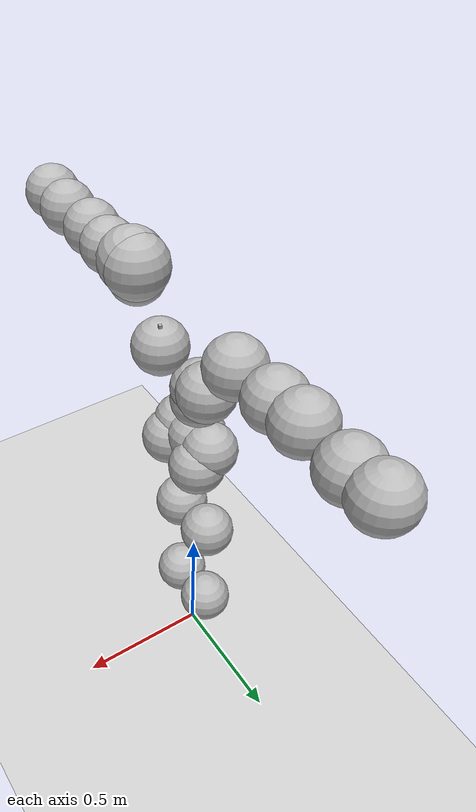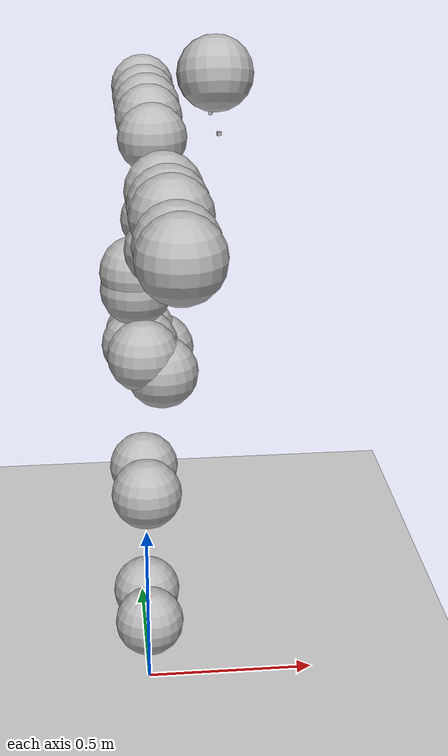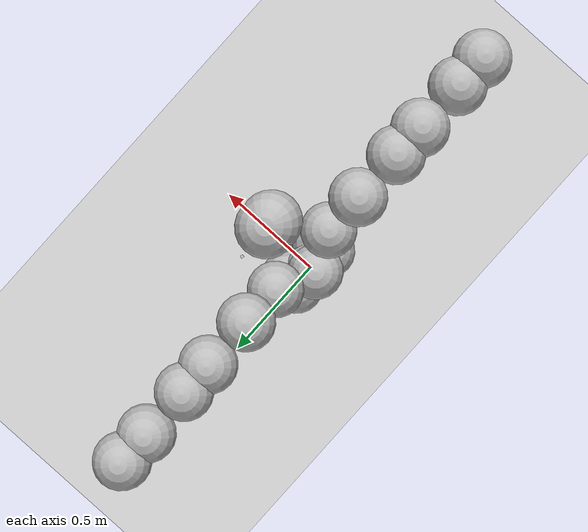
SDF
<?xml version="1.0" ?>
<sdf version="1.5">
  <world name="default">
    <!-- A ground plane -->
    <include>
      <uri>model://ground_plane</uri>
    </include>
    <gui fullscreen="0">
      <camera name="user_camera">
        <pose>-25 -15 12.0539 7.08002e-18 0.2 0.352194</pose>
      </camera>
    </gui>
    <scene>
      <ambient>0.5 0.5 0.5 1</ambient>
      <background>0.5 0.5 0.5 1</background>
      <shadows>0</shadows>
    </scene>
    <include>
      <uri>model://sun</uri>
    </include>
    <physics type="ode">
      <gravity>0 0 -9.81</gravity>
      <ode>
        <solver>
          <type>quick</type>
          <iters>50</iters>
          <sor>1.4</sor>
        </solver>
        <constraints>
          <cfm>0</cfm>
          <erp>1</erp>
          <contact_max_correcting_vel>0</contact_max_correcting_vel>
          <contact_surface_layer>0</contact_surface_layer>
        </constraints>
      </ode>
      <max_step_size>0.001</max_step_size>
      <real_time_factor>1</real_time_factor>
      <real_time_update_rate>1000</real_time_update_rate>
    </physics>
    <!-- A copy of atlas robot with all visual and
         collision geoms replaced by spheres.
    -->
    <model name="sphere_atlas">
      <link name="pelvis">
        <pose>0 0 0 0 -0 0</pose>
        <inertial>
          <pose>0.0113715 0 0.0268706 0 -0 0</pose>
          <mass>17.982</mass>
          <inertia>
            <ixx>0.125569</ixx>
            <ixy>0.0008</ixy>
            <ixz>-0.000499757</ixz>
            <iyy>0.0972062</iyy>
            <iyz>-0.0005</iyz>
            <izz>0.117937</izz>
          </inertia>
        </inertial>
        <collision name="pelvis_collision">
          <pose>0 0 0 0 -0 0</pose>
          <geometry>
            <sphere>
              <radius>0.1</radius>
            </sphere>
          </geometry>
          <surface>
            <contact>
              <ode />
            </contact>
            <friction>
              <ode>
                <mu>0.9</mu>
                <mu2>0.9</mu2>
              </ode>
            </friction>
          </surface>
        </collision>
        <visual name="pelvis_visual">
          <pose>0 0 0 0 -0 0</pose>
          <geometry>
            <sphere>
              <radius>0.1</radius>
            </sphere>
          </geometry>
        </visual>
        <visual name="pelvis_visual_imu_link">
          <pose>0.0599153 0 -0.01415 0 -0 0</pose>
          <geometry>
            <box>
              <size>0.01 0.01 0.01</size>
            </box>
          </geometry>
        </visual>
        <velocity_decay>
          <linear>0</linear>
          <angular>0</angular>
        </velocity_decay>
        <gravity>1</gravity>
        <velocity_decay>
          <linear>0</linear>
          <angular>0</angular>
        </velocity_decay>
        <self_collide>0</self_collide>
        <sensor name="imu_sensor" type="imu">
          <always_on>1</always_on>
          <update_rate>1000</update_rate>
          <imu>
            <angular_velocity>
              <x>
                <noise type="gaussian">
                 <mean>0</mean>
                 <stddev>0.0002</stddev>
                 <bias_mean>7.5e-06</bias_mean>
                 <bias_stddev>8e-07</bias_stddev>
                </noise>
              </x>
              <y>
                <noise type="gaussian">
                 <mean>0</mean>
                 <stddev>0.0002</stddev>
                 <bias_mean>7.5e-06</bias_mean>
                 <bias_stddev>8e-07</bias_stddev>
                </noise>
              </y>
              <z>
                <noise type="gaussian">
                 <mean>0</mean>
                 <stddev>0.0002</stddev>
                 <bias_mean>7.5e-06</bias_mean>
                 <bias_stddev>8e-07</bias_stddev>
                </noise>
              </z>
            </angular_velocity>

            <linear_acceleration>
              <x>
                <noise type="gaussian">
                  <mean>0</mean>
                  <stddev>0.017</stddev>
                  <bias_mean>0.1</bias_mean>
                  <bias_stddev>0.001</bias_stddev>
                </noise>
              </x>
              <y>
                <noise type="gaussian">
                  <mean>0</mean>
                  <stddev>0.017</stddev>
                  <bias_mean>0.1</bias_mean>
                  <bias_stddev>0.001</bias_stddev>
                </noise>
              </y>
              <z>
                <noise type="gaussian">
                  <mean>0</mean>
                  <stddev>0.017</stddev>
                  <bias_mean>0.1</bias_mean>
                  <bias_stddev>0.001</bias_stddev>
                </noise>
              </z>
            </linear_acceleration>
          </imu>
          <pose>0.0599153 0 -0.01415 0 -0 0</pose>
        </sensor>
      </link>
      <link name="ltorso">
        <pose>-0.0125 0 0 0 -0 0</pose>
        <inertial>
          <pose>-0.0112984 -3.15366e-06 0.0746835 0 -0 0</pose>
          <mass>2.409</mass>
          <inertia>
            <ixx>0.0039092</ixx>
            <ixy>-5.04491e-08</ixy>
            <ixz>-0.000342157</ixz>
            <iyy>0.00341694</iyy>
            <iyz>4.87119e-07</iyz>
            <izz>0.00174492</izz>
          </inertia>
        </inertial>
        <collision name="ltorso_collision">
          <pose>0 0 0 0 -0 0</pose>
          <geometry>
            <sphere>
              <radius>0.1</radius>
            </sphere>
          </geometry>
          <surface>
            <contact>
              <ode />
            </contact>
            <friction>
              <ode>
                <mu>0.9</mu>
                <mu2>0.9</mu2>
              </ode>
            </friction>
          </surface>
        </collision>
        <visual name="ltorso_visual">
          <pose>0 0 0 0 -0 0</pose>
          <geometry>
            <sphere>
              <radius>0.1</radius>
            </sphere>
          </geometry>
        </visual>
        <gravity>1</gravity>
        <velocity_decay>
          <linear>0</linear>
          <angular>0</angular>
        </velocity_decay>
        <self_collide>0</self_collide>
      </link>
      <joint name="back_bkz" type="revolute">
        <child>ltorso</child>
        <parent>pelvis</parent>
        <axis>
          <xyz>0 0 1</xyz>
          <limit>
            <lower>-0.663225</lower>
            <upper>0.663225</upper>
            <effort>124.016</effort>
            <velocity>12</velocity>
          </limit>
          <dynamics>
            <damping>0.1</damping>
          </dynamics>
          <use_parent_model_frame>true</use_parent_model_frame>
        </axis>
        <physics>
          <ode>
            <cfm_damping>1</cfm_damping>
            <limit>
              <cfm>0</cfm>
              <erp>0.2</erp>
            </limit>
          </ode>
        </physics>
      </joint>
      <link name="mtorso">
        <pose>-0.0125 0 0.16197 0 -0 0</pose>
        <inertial>
          <pose>-0.00816266 -0.0131245 0.0305974 0 -0 0</pose>
          <mass>0.69</mass>
          <inertia>
            <ixx>0.000454181</ixx>
            <ixy>-6.10764e-05</ixy>
            <ixz>3.94009e-05</ixz>
            <iyy>0.000483282</iyy>
            <iyz>5.27463e-05</iyz>
            <izz>0.000444215</izz>
          </inertia>
        </inertial>
        <collision name="mtorso_collision">
          <pose>0 0 0 0 -0 0</pose>
          <geometry>
            <sphere>
              <radius>0.1</radius>
            </sphere>
          </geometry>
          <surface>
            <contact>
              <ode />
            </contact>
            <friction>
              <ode>
                <mu>0.9</mu>
                <mu2>0.9</mu2>
              </ode>
            </friction>
          </surface>
        </collision>
        <visual name="mtorso_visual">
          <pose>0 0 0 0 -0 0</pose>
          <geometry>
            <sphere>
              <radius>0.1</radius>
            </sphere>
          </geometry>
        </visual>
        <gravity>1</gravity>
        <velocity_decay>
          <linear>0</linear>
          <angular>0</angular>
        </velocity_decay>
        <self_collide>0</self_collide>
      </link>
      <joint name="back_bky" type="revolute">
        <child>mtorso</child>
        <parent>ltorso</parent>
        <axis>
          <xyz>0 1 0</xyz>
          <limit>
            <lower>-0.610691</lower>
            <upper>0.438427</upper>
            <effort>206.843</effort>
            <velocity>12</velocity>
          </limit>
          <dynamics>
            <damping>0.1</damping>
          </dynamics>
          <use_parent_model_frame>true</use_parent_model_frame>
        </axis>
        <physics>
          <ode>
            <cfm_damping>1</cfm_damping>
            <limit>
              <cfm>0</cfm>
              <erp>0.2</erp>
            </limit>
          </ode>
        </physics>
      </joint>
      <link name="utorso">
        <pose>-0.0125 0 0.21197 0 -0 0</pose>
        <inertial>
          <pose>-0.0911174 0 0.300409 0 -0 0</pose>
          <mass>52.207</mass>
          <inertia>
            <ixx>1.47126</ixx>
            <ixy>0.00362</ixy>
            <ixz>0.329434</ixz>
            <iyy>1.53128</iyy>
            <iyz>0.001</iyz>
            <izz>1.32197</izz>
          </inertia>
        </inertial>
        <collision name="utorso_collision">
          <pose>0 0 0 0 -0 0</pose>
          <geometry>
            <sphere>
              <radius>0.1</radius>
            </sphere>
          </geometry>
          <surface>
            <contact>
              <ode />
            </contact>
            <friction>
              <ode>
                <mu>0.9</mu>
                <mu2>0.9</mu2>
              </ode>
            </friction>
          </surface>
        </collision>
        <collision name="utorso_collision_utorso_1">
          <pose>0 0 0 0 -0 0</pose>
          <geometry>
            <sphere>
              <radius>0.1</radius>
            </sphere>
          </geometry>
          <surface>
            <contact>
              <ode />
            </contact>
            <friction>
              <ode>
                <mu>0.9</mu>
                <mu2>0.9</mu2>
              </ode>
            </friction>
          </surface>
        </collision>
        <visual name="utorso_visual">
          <pose>0 0 0 0 -0 0</pose>
          <geometry>
            <sphere>
              <radius>0.1</radius>
            </sphere>
          </geometry>
        </visual>
        <visual name="utorso_visual_utorso_1">
          <pose>0 0 0 0 -0 0</pose>
          <geometry>
            <sphere>
              <radius>0.1</radius>
            </sphere>
          </geometry>
        </visual>
        <visual name="utorso_visual_l_situational_awareness_camera_link">
          <pose>0.216409 0.121799 0.406759 -1.5708 5.55112e-17 1.309</pose>
          <geometry>
            <box>
              <size>0.01 0.01 0.01</size>
            </box>
          </geometry>
        </visual>
        <visual name="utorso_visual_r_situational_awareness_camera_link">
          <pose>0.216409 -0.121799 0.406759 1.5708 5.55112e-17 -1.309</pose>
          <geometry>
            <box>
              <size>0.01 0.01 0.01</size>
            </box>
          </geometry>
        </visual>
        <velocity_decay>
          <linear>0</linear>
          <angular>0</angular>
        </velocity_decay>
        <velocity_decay>
          <linear>0</linear>
          <angular>0</angular>
        </velocity_decay>
        <gravity>1</gravity>
        <velocity_decay>
          <linear>0</linear>
          <angular>0</angular>
        </velocity_decay>
        <self_collide>0</self_collide>
      </link>
      <joint name="back_bkx" type="revolute">
        <child>utorso</child>
        <parent>mtorso</parent>
        <axis>
          <xyz>1 0 0</xyz>
          <limit>
            <lower>-0.698132</lower>
            <upper>0.698132</upper>
            <effort>200</effort>
            <velocity>12</velocity>
          </limit>
          <dynamics>
            <damping>0.1</damping>
          </dynamics>
          <use_parent_model_frame>true</use_parent_model_frame>
        </axis>
        <physics>
          <ode>
            <cfm_damping>1</cfm_damping>
            <limit>
              <cfm>0</cfm>
              <erp>0.2</erp>
            </limit>
          </ode>
        </physics>
      </joint>
      <link name="l_clav">
        <pose>0.05191 0.13866 0.31915 0 -0 0</pose>
        <inertial>
          <pose>0 0.048 0.084 0 -0 0</pose>
          <mass>3.45</mass>
          <inertia>
            <ixx>0.011</ixx>
            <ixy>0</ixy>
            <ixz>0</ixz>
            <iyy>0.009</iyy>
            <iyz>-0.004</iyz>
            <izz>0.004</izz>
          </inertia>
        </inertial>
        <collision name="l_clav_collision">
          <pose>0 0 0 0 -0 0</pose>
          <geometry>
            <sphere>
              <radius>0.1</radius>
            </sphere>
          </geometry>
          <surface>
            <contact>
              <ode />
            </contact>
            <friction>
              <ode>
                <mu>0.9</mu>
                <mu2>0.9</mu2>
              </ode>
            </friction>
          </surface>
        </collision>
        <visual name="l_clav_visual">
          <pose>0 0 0 0 -0 0</pose>
          <geometry>
            <sphere>
              <radius>0.1</radius>
            </sphere>
          </geometry>
        </visual>
        <gravity>1</gravity>
        <velocity_decay>
          <linear>0</linear>
          <angular>0</angular>
        </velocity_decay>
        <self_collide>0</self_collide>
      </link>
      <joint name="l_arm_shy" type="revolute">
        <child>l_clav</child>
        <parent>utorso</parent>
        <axis>
          <xyz>0 0.5 0.866025</xyz>
          <limit>
            <lower>-1.5708</lower>
            <upper>0.785398</upper>
            <effort>212</effort>
            <velocity>12</velocity>
          </limit>
          <dynamics>
            <damping>0.1</damping>
          </dynamics>
          <use_parent_model_frame>true</use_parent_model_frame>
        </axis>
        <physics>
          <ode>
            <cfm_damping>1</cfm_damping>
            <limit>
              <cfm>0</cfm>
              <erp>0.2</erp>
            </limit>
          </ode>
        </physics>
      </joint>
      <link name="l_scap">
        <pose>0.05191 0.27901 0.51524 0 -0 0</pose>
        <inertial>
          <pose>0 0 0 0 -0 0</pose>
          <mass>3.012</mass>
          <inertia>
            <ixx>0.00319</ixx>
            <ixy>0</ixy>
            <ixz>0</ixz>
            <iyy>0.00583</iyy>
            <iyz>0</iyz>
            <izz>0.00583</izz>
          </inertia>
        </inertial>
        <collision name="l_scap_collision">
          <pose>0 0 0 0 -0 0</pose>
          <geometry>
            <sphere>
              <radius>0.1</radius>
            </sphere>
          </geometry>
          <surface>
            <contact>
              <ode />
            </contact>
            <friction>
              <ode>
                <mu>0.9</mu>
                <mu2>0.9</mu2>
              </ode>
            </friction>
          </surface>
        </collision>
        <visual name="l_scap_visual">
          <pose>0 0 0 0 -0 0</pose>
          <geometry>
            <sphere>
              <radius>0.1</radius>
            </sphere>
          </geometry>
        </visual>
        <gravity>1</gravity>
        <velocity_decay>
          <linear>0</linear>
          <angular>0</angular>
        </velocity_decay>
        <self_collide>0</self_collide>
      </link>
      <joint name="l_arm_shx" type="revolute">
        <child>l_scap</child>
        <parent>l_clav</parent>
        <axis>
          <xyz>1 0 0</xyz>
          <limit>
            <lower>-1.5708</lower>
            <upper>1.5708</upper>
            <effort>170</effort>
            <velocity>12</velocity>
          </limit>
          <dynamics>
            <damping>0.1</damping>
          </dynamics>
          <use_parent_model_frame>true</use_parent_model_frame>
        </axis>
        <physics>
          <ode>
            <cfm_damping>1</cfm_damping>
            <limit>
              <cfm>0</cfm>
              <erp>0.2</erp>
            </limit>
          </ode>
        </physics>
      </joint>
      <link name="l_uarm">
        <pose>0.05191 0.46601 0.53124 0 -0 0</pose>
        <inertial>
          <pose>0 -0.065 0 0 -0 0</pose>
          <mass>3.388</mass>
          <inertia>
            <ixx>0.00656</ixx>
            <ixy>0</ixy>
            <ixz>0</ixz>
            <iyy>0.00358</iyy>
            <iyz>0</iyz>
            <izz>0.00656</izz>
          </inertia>
        </inertial>
        <collision name="l_uarm_collision">
          <pose>0 0 0 0 -0 0</pose>
          <geometry>
            <sphere>
              <radius>0.1</radius>
            </sphere>
          </geometry>
          <surface>
            <contact>
              <ode />
            </contact>
            <friction>
              <ode>
                <mu>0.9</mu>
                <mu2>0.9</mu2>
              </ode>
            </friction>
          </surface>
        </collision>
        <visual name="l_uarm_visual">
          <pose>0 0 0 0 -0 0</pose>
          <geometry>
            <sphere>
              <radius>0.1</radius>
            </sphere>
          </geometry>
        </visual>
        <gravity>1</gravity>
        <velocity_decay>
          <linear>0</linear>
          <angular>0</angular>
        </velocity_decay>
        <self_collide>0</self_collide>
      </link>
      <joint name="l_arm_ely" type="revolute">
        <child>l_uarm</child>
        <parent>l_scap</parent>
        <axis>
          <xyz>0 1 0</xyz>
          <limit>
            <lower>0</lower>
            <upper>3.14159</upper>
            <effort>114</effort>
            <velocity>12</velocity>
          </limit>
          <dynamics>
            <damping>0.1</damping>
          </dynamics>
          <use_parent_model_frame>true</use_parent_model_frame>
        </axis>
        <physics>
          <ode>
            <cfm_damping>1</cfm_damping>
            <limit>
              <cfm>0</cfm>
              <erp>0.2</erp>
            </limit>
          </ode>
        </physics>
      </joint>
      <link name="l_larm">
        <pose>0.05191 0.58501 0.54045 0 -0 0</pose>
        <inertial>
          <pose>0 0 0 0 -0 0</pose>
          <mass>2.509</mass>
          <inertia>
            <ixx>0.00265</ixx>
            <ixy>0</ixy>
            <ixz>0</ixz>
            <iyy>0.00446</iyy>
            <iyz>0</iyz>
            <izz>0.00446</izz>
          </inertia>
        </inertial>
        <collision name="l_larm_collision">
          <pose>0 0 0 0 -0 0</pose>
          <geometry>
            <sphere>
              <radius>0.1</radius>
            </sphere>
          </geometry>
          <surface>
            <contact>
              <ode />
            </contact>
            <friction>
              <ode>
                <mu>0.9</mu>
                <mu2>0.9</mu2>
              </ode>
            </friction>
          </surface>
        </collision>
        <visual name="l_larm_visual">
          <pose>0 0 0 0 -0 0</pose>
          <geometry>
            <sphere>
              <radius>0.1</radius>
            </sphere>
          </geometry>
        </visual>
        <gravity>1</gravity>
        <velocity_decay>
          <linear>0</linear>
          <angular>0</angular>
        </velocity_decay>
        <self_collide>0</self_collide>
      </link>
      <joint name="l_arm_elx" type="revolute">
        <child>l_larm</child>
        <parent>l_uarm</parent>
        <axis>
          <xyz>1 0 0</xyz>
          <limit>
            <lower>0</lower>
            <upper>2.35619</upper>
            <effort>114</effort>
            <velocity>12</velocity>
          </limit>
          <dynamics>
            <damping>0.1</damping>
          </dynamics>
          <use_parent_model_frame>true</use_parent_model_frame>
        </axis>
        <physics>
          <ode>
            <cfm_damping>1</cfm_damping>
            <limit>
              <cfm>0</cfm>
              <erp>0.2</erp>
            </limit>
          </ode>
        </physics>
      </joint>
      <link name="l_farm">
        <pose>0.05191 0.77201 0.53124 0 -0 0</pose>
        <inertial>
          <pose>0 -0.065 0 0 -0 0</pose>
          <mass>3.388</mass>
          <inertia>
            <ixx>0.00656</ixx>
            <ixy>0</ixy>
            <ixz>0</ixz>
            <iyy>0.00358</iyy>
            <iyz>0</iyz>
            <izz>0.00656</izz>
          </inertia>
        </inertial>
        <collision name="l_farm_collision">
          <pose>0 0 0 0 -0 0</pose>
          <geometry>
            <sphere>
              <radius>0.1</radius>
            </sphere>
          </geometry>
          <surface>
            <contact>
              <ode />
            </contact>
            <friction>
              <ode>
                <mu>0.9</mu>
                <mu2>0.9</mu2>
              </ode>
            </friction>
          </surface>
        </collision>
        <visual name="l_farm_visual">
          <pose>0 0 0 0 -0 0</pose>
          <geometry>
            <sphere>
              <radius>0.1</radius>
            </sphere>
          </geometry>
        </visual>
        <gravity>1</gravity>
        <velocity_decay>
          <linear>0</linear>
          <angular>0</angular>
        </velocity_decay>
        <self_collide>0</self_collide>
      </link>
      <joint name="l_arm_wry" type="revolute">
        <child>l_farm</child>
        <parent>l_larm</parent>
        <axis>
          <xyz>0 1 0</xyz>
          <limit>
            <lower>0</lower>
            <upper>3.14159</upper>
            <effort>114</effort>
            <velocity>12</velocity>
          </limit>
          <dynamics>
            <damping>0.1</damping>
          </dynamics>
          <use_parent_model_frame>true</use_parent_model_frame>
        </axis>
        <physics>
          <ode>
            <cfm_damping>1</cfm_damping>
            <limit>
              <cfm>0</cfm>
              <erp>0.2</erp>
            </limit>
          </ode>
        </physics>
      </joint>
      <link name="l_hand">
        <pose>0.05191 0.89101 0.54045 0 -0 0</pose>
        <inertial>
          <pose>0 0 0 0 -0 0</pose>
          <mass>2.509</mass>
          <inertia>
            <ixx>0.00265</ixx>
            <ixy>0</ixy>
            <ixz>0</ixz>
            <iyy>0.00446</iyy>
            <iyz>0</iyz>
            <izz>0.00446</izz>
          </inertia>
        </inertial>
        <collision name="l_hand_collision">
          <pose>0 0 0 0 -0 0</pose>
          <geometry>
            <sphere>
              <radius>0.1</radius>
            </sphere>
          </geometry>
          <surface>
            <contact>
              <ode />
            </contact>
            <friction>
              <ode>
                <mu>0.9</mu>
                <mu2>0.9</mu2>
              </ode>
            </friction>
          </surface>
        </collision>
        <visual name="l_hand_visual">
          <pose>0 0 0 0 -0 0</pose>
          <geometry>
            <sphere>
              <radius>0.1</radius>
            </sphere>
          </geometry>
        </visual>
        <gravity>1</gravity>
        <velocity_decay>
          <linear>0</linear>
          <angular>0</angular>
        </velocity_decay>
        <self_collide>0</self_collide>
      </link>
      <joint name="l_arm_wrx" type="revolute">
        <child>l_hand</child>
        <parent>l_farm</parent>
        <axis>
          <xyz>1 0 0</xyz>
          <limit>
            <lower>-1.1781</lower>
            <upper>1.1781</upper>
            <effort>60</effort>
            <velocity>12</velocity>
          </limit>
          <dynamics>
            <damping>0.1</damping>
          </dynamics>
          <use_parent_model_frame>true</use_parent_model_frame>
        </axis>
        <physics>
          <provide_feedback>1</provide_feedback>
          <ode>
            <provide_feedback>1</provide_feedback>
            <limit>
              <cfm>0</cfm>
              <erp>0.2</erp>
            </limit>
            <cfm_damping>1</cfm_damping>
          </ode>
        </physics>
      </joint>
      <link name="head">
        <pose>0.20422 0 0.74993 0 -0 0</pose>
        <inertial>
          <pose>-0.0754942 3.38765e-05 0.0277411 0 -0 0</pose>
          <mass>1.41991</mass>
          <inertia>
            <ixx>0.00361284</ixx>
            <ixy>-1.51324e-06</ixy>
            <ixz>-0.000892818</ixz>
            <iyy>0.00208745</iyy>
            <iyz>-6.83342e-07</iyz>
            <izz>0.00179047</izz>
          </inertia>
        </inertial>
        <collision name="head_collision">
          <pose>-0.0503 0 -0.00195 0 -0 0</pose>
          <geometry>
            <box>
              <size>0.1311 0.12 0.0591</size>
            </box>
          </geometry>
          <surface>
            <contact>
              <ode />
            </contact>
            <friction>
              <ode>
                <mu>0.9</mu>
                <mu2>0.9</mu2>
              </ode>
            </friction>
          </surface>
        </collision>
        <collision name="head_collision_head_other">
          <pose>-0.093 0 0.0868 0 -0 0</pose>
          <geometry>
            <box>
              <size>0.0468 0.12 0.1184</size>
            </box>
          </geometry>
          <surface>
            <contact>
              <ode />
            </contact>
            <friction>
              <ode>
                <mu>0.9</mu>
                <mu2>0.9</mu2>
              </ode>
            </friction>
          </surface>
        </collision>
        <visual name="head_visual">
          <pose>0 0 0 0 -0 0</pose>
          <geometry>
            <sphere>
              <radius>0.1</radius>
            </sphere>
          </geometry>
        </visual>
        <visual name="head_visual_head_imu_link">
          <pose>-0.0475 0.035 0 0 -0 0</pose>
          <geometry>
            <box>
              <size>0.01 0.01 0.01</size>
            </box>
          </geometry>
        </visual>
        <velocity_decay>
          <linear>0</linear>
          <angular>0</angular>
        </velocity_decay>
        <velocity_decay>
          <linear>0</linear>
          <angular>0</angular>
        </velocity_decay>
        <sensor name="head_imu_sensor" type="imu">
          <always_on>1</always_on>
          <update_rate>1000</update_rate>
          <imu>
            <noise>
              <type>gaussian</type>
              <rate>
                <mean>0</mean>
                <stddev>0.0002</stddev>
                <bias_mean>7.5e-06</bias_mean>
                <bias_stddev>8e-07</bias_stddev>
              </rate>
              <accel>
                <mean>0</mean>
                <stddev>0.017</stddev>
                <bias_mean>0.1</bias_mean>
                <bias_stddev>0.001</bias_stddev>
              </accel>
            </noise>
          </imu>
          <pose>-0.0475 0.035 0 0 -0 0</pose>
        </sensor>
        <gravity>1</gravity>
        <velocity_decay>
          <linear>0</linear>
          <angular>0</angular>
        </velocity_decay>
        <self_collide>0</self_collide>
      </link>
      <joint name="neck_ry" type="revolute">
        <child>head</child>
        <parent>utorso</parent>
        <axis>
          <xyz>0 1 0</xyz>
          <limit>
            <lower>-0.602139</lower>
            <upper>1.14494</upper>
            <effort>5</effort>
            <velocity>12</velocity>
          </limit>
          <dynamics>
            <damping>0.1</damping>
          </dynamics>
          <use_parent_model_frame>true</use_parent_model_frame>
        </axis>
        <physics>
          <ode>
            <cfm_damping>1</cfm_damping>
            <limit>
              <cfm>0</cfm>
              <erp>0.2</erp>
            </limit>
          </ode>
        </physics>
      </joint>
      <link name="hokuyo_link">
        <pose>0.15962 0 0.83793 0 -0 0</pose>
        <inertial>
          <pose>0.0124384 0.0004084 -0.0041783 0 -0 0</pose>
          <mass>0.057664</mass>
          <inertia>
            <ixx>0.000401606</ixx>
            <ixy>4.9927e-08</ixy>
            <ixz>1.0997e-05</ixz>
            <iyy>0.00208115</iyy>
            <iyz>-9.8165e-09</iyz>
            <izz>0.00178402</izz>
          </inertia>
        </inertial>
        <collision name="hokuyo_link_collision">
          <pose>0.01885 0 -0.02119 0 -0 0</pose>
          <geometry>
            <box>
              <size>0.08 0.06 0.04238</size>
            </box>
          </geometry>
          <surface>
            <contact>
              <ode />
            </contact>
            <friction>
              <ode>
                <mu>0.9</mu>
                <mu2>0.9</mu2>
              </ode>
            </friction>
          </surface>
        </collision>
        <collision name="hokuyo_link_collision_hokuyo_link_other">
          <pose>0.03 0 0.0235 0 -0 0</pose>
          <geometry>
            <cylinder>
              <length>0.047</length>
              <radius>0.024425</radius>
            </cylinder>
          </geometry>
          <surface>
            <contact>
              <ode />
            </contact>
            <friction>
              <ode>
                <mu>0.9</mu>
                <mu2>0.9</mu2>
              </ode>
            </friction>
          </surface>
        </collision>
        <visual name="hokuyo_link_visual">
          <pose>0.045 -0.0261018 -0.0834237 -0.314 0 0</pose>
          <geometry>
            <sphere>
              <radius>0.1</radius>
            </sphere>
          </geometry>
        </visual>
        <velocity_decay>
          <linear>0</linear>
          <angular>0</angular>
        </velocity_decay>
        <gravity>1</gravity>
        <velocity_decay>
          <linear>0</linear>
          <angular>0</angular>
        </velocity_decay>
        <self_collide>0</self_collide>
      </link>
      <joint name="hokuyo_joint" type="revolute">
        <child>hokuyo_link</child>
        <parent>head</parent>
        <axis>
          <xyz>1 0 0</xyz>
          <limit>
            <lower>-1e+16</lower>
            <upper>1e+16</upper>
          </limit>
          <dynamics>
            <damping>0.01</damping>
          </dynamics>
          <use_parent_model_frame>true</use_parent_model_frame>
        </axis>
        <physics>
          <ode>
            <cfm_damping>1</cfm_damping>
          </ode>
        </physics>
      </joint>
      <link name="r_clav">
        <pose>0.05191 -0.13866 0.31915 0 -0 0</pose>
        <inertial>
          <pose>0 -0.048 0.084 0 -0 0</pose>
          <mass>3.45</mass>
          <inertia>
            <ixx>0.011</ixx>
            <ixy>0</ixy>
            <ixz>0</ixz>
            <iyy>0.009</iyy>
            <iyz>0.004</iyz>
            <izz>0.004</izz>
          </inertia>
        </inertial>
        <collision name="r_clav_collision">
          <pose>0 0 0 0 -0 0</pose>
          <geometry>
            <sphere>
              <radius>0.1</radius>
            </sphere>
          </geometry>
          <surface>
            <contact>
              <ode />
            </contact>
            <friction>
              <ode>
                <mu>0.9</mu>
                <mu2>0.9</mu2>
              </ode>
            </friction>
          </surface>
        </collision>
        <visual name="r_clav_visual">
          <pose>0 0 0 0 -0 0</pose>
          <geometry>
            <sphere>
              <radius>0.1</radius>
            </sphere>
          </geometry>
        </visual>
        <gravity>1</gravity>
        <velocity_decay>
          <linear>0</linear>
          <angular>0</angular>
        </velocity_decay>
        <self_collide>0</self_collide>
      </link>
      <joint name="r_arm_shy" type="revolute">
        <child>r_clav</child>
        <parent>utorso</parent>
        <axis>
          <xyz>0 0.5 -0.866025</xyz>
          <limit>
            <lower>-1.5708</lower>
            <upper>0.785398</upper>
            <effort>212</effort>
            <velocity>12</velocity>
          </limit>
          <dynamics>
            <damping>0.1</damping>
          </dynamics>
          <use_parent_model_frame>true</use_parent_model_frame>
        </axis>
        <physics>
          <ode>
            <cfm_damping>1</cfm_damping>
            <limit>
              <cfm>0</cfm>
              <erp>0.2</erp>
            </limit>
          </ode>
        </physics>
      </joint>
      <link name="r_scap">
        <pose>0.05191 -0.27901 0.51524 0 -0 0</pose>
        <inertial>
          <pose>0 0 0 0 -0 0</pose>
          <mass>3.012</mass>
          <inertia>
            <ixx>0.00319</ixx>
            <ixy>0</ixy>
            <ixz>0</ixz>
            <iyy>0.00583</iyy>
            <iyz>0</iyz>
            <izz>0.00583</izz>
          </inertia>
        </inertial>
        <collision name="r_scap_collision">
          <pose>0 0 0 0 -0 0</pose>
          <geometry>
            <sphere>
              <radius>0.1</radius>
            </sphere>
          </geometry>
          <surface>
            <contact>
              <ode />
            </contact>
            <friction>
              <ode>
                <mu>0.9</mu>
                <mu2>0.9</mu2>
              </ode>
            </friction>
          </surface>
        </collision>
        <visual name="r_scap_visual">
          <pose>0 0 0 0 -0 0</pose>
          <geometry>
            <sphere>
              <radius>0.1</radius>
            </sphere>
          </geometry>
        </visual>
        <gravity>1</gravity>
        <velocity_decay>
          <linear>0</linear>
          <angular>0</angular>
        </velocity_decay>
        <self_collide>0</self_collide>
      </link>
      <joint name="r_arm_shx" type="revolute">
        <child>r_scap</child>
        <parent>r_clav</parent>
        <axis>
          <xyz>1 0 0</xyz>
          <limit>
            <lower>-1.5708</lower>
            <upper>1.5708</upper>
            <effort>170</effort>
            <velocity>12</velocity>
          </limit>
          <dynamics>
            <damping>0.1</damping>
          </dynamics>
          <use_parent_model_frame>true</use_parent_model_frame>
        </axis>
        <physics>
          <ode>
            <cfm_damping>1</cfm_damping>
            <limit>
              <cfm>0</cfm>
              <erp>0.2</erp>
            </limit>
          </ode>
        </physics>
      </joint>
      <link name="r_uarm">
        <pose>0.05191 -0.46601 0.53124 0 -0 0</pose>
        <inertial>
          <pose>0 0.065 0 0 -0 0</pose>
          <mass>3.388</mass>
          <inertia>
            <ixx>0.00656</ixx>
            <ixy>0</ixy>
            <ixz>0</ixz>
            <iyy>0.00358</iyy>
            <iyz>0</iyz>
            <izz>0.00656</izz>
          </inertia>
        </inertial>
        <collision name="r_uarm_collision">
          <pose>0 0 0 0 -0 0</pose>
          <geometry>
            <sphere>
              <radius>0.1</radius>
            </sphere>
          </geometry>
          <surface>
            <contact>
              <ode />
            </contact>
            <friction>
              <ode>
                <mu>0.9</mu>
                <mu2>0.9</mu2>
              </ode>
            </friction>
          </surface>
        </collision>
        <visual name="r_uarm_visual">
          <pose>0 0 0 0 -0 0</pose>
          <geometry>
            <sphere>
              <radius>0.1</radius>
            </sphere>
          </geometry>
        </visual>
        <gravity>1</gravity>
        <velocity_decay>
          <linear>0</linear>
          <angular>0</angular>
        </velocity_decay>
        <self_collide>0</self_collide>
      </link>
      <joint name="r_arm_ely" type="revolute">
        <child>r_uarm</child>
        <parent>r_scap</parent>
        <axis>
          <xyz>0 1 0</xyz>
          <limit>
            <lower>0</lower>
            <upper>3.14159</upper>
            <effort>114</effort>
            <velocity>12</velocity>
          </limit>
          <dynamics>
            <damping>0.1</damping>
          </dynamics>
          <use_parent_model_frame>true</use_parent_model_frame>
        </axis>
        <physics>
          <ode>
            <cfm_damping>1</cfm_damping>
            <limit>
              <cfm>0</cfm>
              <erp>0.2</erp>
            </limit>
          </ode>
        </physics>
      </joint>
      <link name="r_larm">
        <pose>0.05191 -0.58501 0.54045 0 -0 0</pose>
        <inertial>
          <pose>0 0 0 0 -0 0</pose>
          <mass>2.509</mass>
          <inertia>
            <ixx>0.00265</ixx>
            <ixy>0</ixy>
            <ixz>0</ixz>
            <iyy>0.00446</iyy>
            <iyz>0</iyz>
            <izz>0.00446</izz>
          </inertia>
        </inertial>
        <collision name="r_larm_collision">
          <pose>0 0 0 0 -0 0</pose>
          <geometry>
            <sphere>
              <radius>0.1</radius>
            </sphere>
          </geometry>
          <surface>
            <contact>
              <ode />
            </contact>
            <friction>
              <ode>
                <mu>0.9</mu>
                <mu2>0.9</mu2>
              </ode>
            </friction>
          </surface>
        </collision>
        <visual name="r_larm_visual">
          <pose>0 0 0 0 -0 0</pose>
          <geometry>
            <sphere>
              <radius>0.1</radius>
            </sphere>
          </geometry>
        </visual>
        <gravity>1</gravity>
        <velocity_decay>
          <linear>0</linear>
          <angular>0</angular>
        </velocity_decay>
        <self_collide>0</self_collide>
      </link>
      <joint name="r_arm_elx" type="revolute">
        <child>r_larm</child>
        <parent>r_uarm</parent>
        <axis>
          <xyz>1 0 0</xyz>
          <limit>
            <lower>-2.35619</lower>
            <upper>0</upper>
            <effort>114</effort>
            <velocity>12</velocity>
          </limit>
          <dynamics>
            <damping>0.1</damping>
          </dynamics>
          <use_parent_model_frame>true</use_parent_model_frame>
        </axis>
        <physics>
          <ode>
            <cfm_damping>1</cfm_damping>
            <limit>
              <cfm>0</cfm>
              <erp>0.2</erp>
            </limit>
          </ode>
        </physics>
      </joint>
      <link name="r_farm">
        <pose>0.05191 -0.77201 0.53124 0 -0 0</pose>
        <inertial>
          <pose>0 0.065 0 0 -0 0</pose>
          <mass>3.388</mass>
          <inertia>
            <ixx>0.00656</ixx>
            <ixy>0</ixy>
            <ixz>0</ixz>
            <iyy>0.00358</iyy>
            <iyz>0</iyz>
            <izz>0.00656</izz>
          </inertia>
        </inertial>
        <collision name="r_farm_collision">
          <pose>0 0 0 0 -0 0</pose>
          <geometry>
            <sphere>
              <radius>0.1</radius>
            </sphere>
          </geometry>
          <surface>
            <contact>
              <ode />
            </contact>
            <friction>
              <ode>
                <mu>0.9</mu>
                <mu2>0.9</mu2>
              </ode>
            </friction>
          </surface>
        </collision>
        <visual name="r_farm_visual">
          <pose>0 0 0 0 -0 0</pose>
          <geometry>
            <sphere>
              <radius>0.1</radius>
            </sphere>
          </geometry>
        </visual>
        <gravity>1</gravity>
        <velocity_decay>
          <linear>0</linear>
          <angular>0</angular>
        </velocity_decay>
        <self_collide>0</self_collide>
      </link>
      <joint name="r_arm_wry" type="revolute">
        <child>r_farm</child>
        <parent>r_larm</parent>
        <axis>
          <xyz>0 1 0</xyz>
          <limit>
            <lower>0</lower>
            <upper>3.14159</upper>
            <effort>114</effort>
            <velocity>12</velocity>
          </limit>
          <dynamics>
            <damping>0.1</damping>
          </dynamics>
          <use_parent_model_frame>true</use_parent_model_frame>
        </axis>
        <physics>
          <ode>
            <cfm_damping>1</cfm_damping>
            <limit>
              <cfm>0</cfm>
              <erp>0.2</erp>
            </limit>
          </ode>
        </physics>
      </joint>
      <link name="r_hand">
        <pose>0.05191 -0.89101 0.54045 0 -0 0</pose>
        <inertial>
          <pose>0 0 0 0 -0 0</pose>
          <mass>2.509</mass>
          <inertia>
            <ixx>0.00265</ixx>
            <ixy>0</ixy>
            <ixz>0</ixz>
            <iyy>0.00446</iyy>
            <iyz>0</iyz>
            <izz>0.00446</izz>
          </inertia>
        </inertial>
        <collision name="r_hand_collision">
          <pose>0 0 0 0 -0 0</pose>
          <geometry>
            <sphere>
              <radius>0.1</radius>
            </sphere>
          </geometry>
          <surface>
            <contact>
              <ode />
            </contact>
            <friction>
              <ode>
                <mu>0.9</mu>
                <mu2>0.9</mu2>
              </ode>
            </friction>
          </surface>
        </collision>
        <visual name="r_hand_visual">
          <pose>0 0 0 0 -0 0</pose>
          <geometry>
            <sphere>
              <radius>0.1</radius>
            </sphere>
          </geometry>
        </visual>
        <gravity>1</gravity>
        <velocity_decay>
          <linear>0</linear>
          <angular>0</angular>
        </velocity_decay>
        <self_collide>0</self_collide>
      </link>
      <joint name="r_arm_wrx" type="revolute">
        <child>r_hand</child>
        <parent>r_farm</parent>
        <axis>
          <xyz>1 0 0</xyz>
          <limit>
            <lower>-1.1781</lower>
            <upper>1.1781</upper>
            <effort>60</effort>
            <velocity>12</velocity>
          </limit>
          <dynamics>
            <damping>0.1</damping>
          </dynamics>
          <use_parent_model_frame>true</use_parent_model_frame>
        </axis>
        <physics>
          <provide_feedback>1</provide_feedback>
          <ode>
            <provide_feedback>1</provide_feedback>
            <limit>
              <cfm>0</cfm>
              <erp>0.2</erp>
            </limit>
            <cfm_damping>1</cfm_damping>
          </ode>
        </physics>
      </joint>
      <link name="l_uglut">
        <pose>0 0.089 0 0 -0 0</pose>
        <inertial>
          <pose>0.00529262 -0.00344732 0.00313046 0 -0 0</pose>
          <mass>0.648</mass>
          <inertia>
            <ixx>0.00074276</ixx>
            <ixy>-3.79607e-08</ixy>
            <ixz>-2.79549e-05</ixz>
            <iyy>0.000688179</iyy>
            <iyz>-3.2735e-08</iyz>
            <izz>0.00041242</izz>
          </inertia>
        </inertial>
        <collision name="l_uglut_collision">
          <pose>0 0 0 0 -0 0</pose>
          <geometry>
            <sphere>
              <radius>0.1</radius>
            </sphere>
          </geometry>
          <surface>
            <contact>
              <ode />
            </contact>
            <friction>
              <ode>
                <mu>0.9</mu>
                <mu2>0.9</mu2>
              </ode>
            </friction>
          </surface>
        </collision>
        <visual name="l_uglut_visual">
          <pose>0 0 0 0 -0 0</pose>
          <geometry>
            <sphere>
              <radius>0.1</radius>
            </sphere>
          </geometry>
        </visual>
        <gravity>1</gravity>
        <velocity_decay>
          <linear>0</linear>
          <angular>0</angular>
        </velocity_decay>
        <self_collide>0</self_collide>
      </link>
      <joint name="l_leg_hpz" type="revolute">
        <child>l_uglut</child>
        <parent>pelvis</parent>
        <axis>
          <xyz>0 0 1</xyz>
          <limit>
            <lower>-0.174533</lower>
            <upper>1.22173</upper>
            <effort>110</effort>
            <velocity>12</velocity>
          </limit>
          <dynamics>
            <damping>0.1</damping>
          </dynamics>
          <use_parent_model_frame>true</use_parent_model_frame>
        </axis>
        <physics>
          <ode>
            <cfm_damping>1</cfm_damping>
            <limit>
              <cfm>0</cfm>
              <erp>0.2</erp>
            </limit>
          </ode>
        </physics>
      </joint>
      <link name="l_lglut">
        <pose>0 0.089 0 0 -0 0</pose>
        <inertial>
          <pose>0.0133341 0.0170484 -0.0312052 0 -0 0</pose>
          <mass>0.866</mass>
          <inertia>
            <ixx>0.000691326</ixx>
            <ixy>-2.24344e-05</ixy>
            <ixz>2.50508e-06</ixz>
            <iyy>0.00126856</iyy>
            <iyz>0.000137862</iyz>
            <izz>0.00106487</izz>
          </inertia>
        </inertial>
        <collision name="l_lglut_collision">
          <pose>0 0 0 0 -0 0</pose>
          <geometry>
            <sphere>
              <radius>0.1</radius>
            </sphere>
          </geometry>
          <surface>
            <contact>
              <ode />
            </contact>
            <friction>
              <ode>
                <mu>0.9</mu>
                <mu2>0.9</mu2>
              </ode>
            </friction>
          </surface>
        </collision>
        <visual name="l_lglut_visual">
          <pose>0 0 0 0 -0 0</pose>
          <geometry>
            <sphere>
              <radius>0.1</radius>
            </sphere>
          </geometry>
        </visual>
        <gravity>1</gravity>
        <velocity_decay>
          <linear>0</linear>
          <angular>0</angular>
        </velocity_decay>
        <self_collide>0</self_collide>
      </link>
      <joint name="l_leg_hpx" type="revolute">
        <child>l_lglut</child>
        <parent>l_uglut</parent>
        <axis>
          <xyz>1 0 0</xyz>
          <limit>
            <lower>-0.523599</lower>
            <upper>0.523599</upper>
            <effort>180</effort>
            <velocity>12</velocity>
          </limit>
          <dynamics>
            <damping>0.1</damping>
          </dynamics>
          <use_parent_model_frame>true</use_parent_model_frame>
        </axis>
        <physics>
          <ode>
            <cfm_damping>1</cfm_damping>
            <limit>
              <cfm>0</cfm>
              <erp>0.2</erp>
            </limit>
          </ode>
        </physics>
      </joint>
      <link name="l_uleg">
        <pose>0.05 0.089 -0.05 0 -0 0</pose>
        <inertial>
          <pose>0 0 -0.21 0 -0 0</pose>
          <mass>9.209</mass>
          <inertia>
            <ixx>0.09</ixx>
            <ixy>0</ixy>
            <ixz>0</ixz>
            <iyy>0.09</iyy>
            <iyz>0</iyz>
            <izz>0.02</izz>
          </inertia>
        </inertial>
        <collision name="l_uleg_collision">
          <pose>0 0 0 0 -0 0</pose>
          <geometry>
            <sphere>
              <radius>0.1</radius>
            </sphere>
          </geometry>
          <surface>
            <contact>
              <ode />
            </contact>
            <friction>
              <ode>
                <mu>0.9</mu>
                <mu2>0.9</mu2>
              </ode>
            </friction>
          </surface>
        </collision>
        <visual name="l_uleg_visual">
          <pose>0 0 0 0 -0 0</pose>
          <geometry>
            <sphere>
              <radius>0.1</radius>
            </sphere>
          </geometry>
        </visual>
        <gravity>1</gravity>
        <velocity_decay>
          <linear>0</linear>
          <angular>0</angular>
        </velocity_decay>
        <self_collide>0</self_collide>
      </link>
      <joint name="l_leg_hpy" type="revolute">
        <child>l_uleg</child>
        <parent>l_lglut</parent>
        <axis>
          <xyz>0 1 0</xyz>
          <limit>
            <lower>-1.72072</lower>
            <upper>0.524821</upper>
            <effort>260</effort>
            <velocity>12</velocity>
          </limit>
          <dynamics>
            <damping>0.1</damping>
          </dynamics>
          <use_parent_model_frame>true</use_parent_model_frame>
        </axis>
        <physics>
          <ode>
            <cfm_damping>1</cfm_damping>
            <limit>
              <cfm>0</cfm>
              <erp>0.2</erp>
            </limit>
          </ode>
        </physics>
      </joint>
      <link name="l_lleg">
        <pose>0 0.089 -0.424 0 -0 0</pose>
        <inertial>
          <pose>0.001 0 -0.187 0 -0 0</pose>
          <mass>5.479</mass>
          <inertia>
            <ixx>0.077</ixx>
            <ixy>0</ixy>
            <ixz>-0.003</ixz>
            <iyy>0.076</iyy>
            <iyz>0</iyz>
            <izz>0.01</izz>
          </inertia>
        </inertial>
        <collision name="l_lleg_collision">
          <pose>0 0 0 0 -0 0</pose>
          <geometry>
            <sphere>
              <radius>0.1</radius>
            </sphere>
          </geometry>
          <surface>
            <contact>
              <ode />
            </contact>
            <friction>
              <ode>
                <mu>0.9</mu>
                <mu2>0.9</mu2>
              </ode>
            </friction>
          </surface>
        </collision>
        <visual name="l_lleg_visual">
          <pose>0 0 0 0 -0 0</pose>
          <geometry>
            <sphere>
              <radius>0.1</radius>
            </sphere>
          </geometry>
        </visual>
        <gravity>1</gravity>
        <velocity_decay>
          <linear>0</linear>
          <angular>0</angular>
        </velocity_decay>
        <self_collide>0</self_collide>
      </link>
      <joint name="l_leg_kny" type="revolute">
        <child>l_lleg</child>
        <parent>l_uleg</parent>
        <axis>
          <xyz>0 1 0</xyz>
          <limit>
            <lower>0</lower>
            <upper>2.38569</upper>
            <effort>220</effort>
            <velocity>12</velocity>
          </limit>
          <dynamics>
            <damping>0.1</damping>
          </dynamics>
          <use_parent_model_frame>true</use_parent_model_frame>
        </axis>
        <physics>
          <ode>
            <cfm_damping>1</cfm_damping>
            <limit>
              <cfm>0</cfm>
              <erp>0.2</erp>
            </limit>
          </ode>
        </physics>
      </joint>
      <link name="l_talus">
        <pose>0 0.089 -0.846 0 -0 0</pose>
        <inertial>
          <pose>0 0 0 0 -0 0</pose>
          <mass>0.125</mass>
          <inertia>
            <ixx>1.01674e-05</ixx>
            <ixy>0</ixy>
            <ixz>0</ixz>
            <iyy>8.42775e-06</iyy>
            <iyz>0</iyz>
            <izz>1.30101e-05</izz>
          </inertia>
        </inertial>
        <collision name="l_talus_collision">
          <pose>0 0 0 0 -0 0</pose>
          <geometry>
            <sphere>
              <radius>0.1</radius>
            </sphere>
          </geometry>
          <surface>
            <contact>
              <ode />
            </contact>
            <friction>
              <ode>
                <mu>0.9</mu>
                <mu2>0.9</mu2>
              </ode>
            </friction>
          </surface>
        </collision>
        <visual name="l_talus_visual">
          <pose>0 0 0 0 -0 0</pose>
          <geometry>
            <sphere>
              <radius>0.1</radius>
            </sphere>
          </geometry>
        </visual>
        <gravity>1</gravity>
        <velocity_decay>
          <linear>0</linear>
          <angular>0</angular>
        </velocity_decay>
        <self_collide>0</self_collide>
      </link>
      <joint name="l_leg_aky" type="revolute">
        <child>l_talus</child>
        <parent>l_lleg</parent>
        <axis>
          <xyz>0 1 0</xyz>
          <limit>
            <lower>-1</lower>
            <upper>0.7</upper>
            <effort>700</effort>
            <velocity>12</velocity>
          </limit>
          <dynamics>
            <damping>0.1</damping>
          </dynamics>
          <use_parent_model_frame>true</use_parent_model_frame>
        </axis>
        <physics>
          <ode>
            <cfm_damping>1</cfm_damping>
            <limit>
              <cfm>0</cfm>
              <erp>0.2</erp>
            </limit>
          </ode>
        </physics>
      </joint>
      <link name="l_foot">
        <pose>0 0.089 -0.846 0 -0 0</pose>
        <inertial>
          <pose>0.027 0 -0.067 0 -0 0</pose>
          <mass>2.05</mass>
          <inertia>
            <ixx>0.002</ixx>
            <ixy>0</ixy>
            <ixz>0</ixz>
            <iyy>0.007</iyy>
            <iyz>0</iyz>
            <izz>0.008</izz>
          </inertia>
        </inertial>
        <collision name="l_foot_collision">
          <pose>0 0 0 0 -0 0</pose>
          <geometry>
            <sphere>
              <radius>0.1</radius>
            </sphere>
          </geometry>
          <surface>
            <contact>
              <ode>
                <kp>1e+06</kp>
                <kd>100</kd>
                <max_vel>1</max_vel>
                <min_depth>0</min_depth>
              </ode>
            </contact>
            <friction>
              <ode>
                <mu>1.5</mu>
                <mu2>1.5</mu2>
                <fdir1>1 0 0</fdir1>
              </ode>
            </friction>
          </surface>
          <surface>
            <contact>
              <ode />
            </contact>
            <friction>
              <ode />
            </friction>
          </surface>
        </collision>
        <visual name="l_foot_visual">
          <pose>0 0 0 0 -0 0</pose>
          <geometry>
            <sphere>
              <radius>0.1</radius>
            </sphere>
          </geometry>
        </visual>
        <velocity_decay>
          <linear>0</linear>
          <angular>0</angular>
        </velocity_decay>
        <gravity>1</gravity>
        <velocity_decay>
          <linear>0</linear>
          <angular>0</angular>
        </velocity_decay>
        <self_collide>0</self_collide>
        <sensor name="l_foot_contact_sensor" type="contact">
          <update_rate>1000</update_rate>
          <always_on>1</always_on>
          <contact>
            <collision>l_foot_collision</collision>
            <topic>/l_foot_contact</topic>
          </contact>
        </sensor>
      </link>
      <joint name="l_leg_akx" type="revolute">
        <child>l_foot</child>
        <parent>l_talus</parent>
        <axis>
          <xyz>1 0 0</xyz>
          <limit>
            <lower>-0.8</lower>
            <upper>0.8</upper>
            <effort>90</effort>
            <velocity>12</velocity>
          </limit>
          <dynamics>
            <damping>0.1</damping>
          </dynamics>
          <use_parent_model_frame>true</use_parent_model_frame>
        </axis>
        <physics>
          <provide_feedback>1</provide_feedback>
          <ode>
            <provide_feedback>1</provide_feedback>
            <cfm_damping>1</cfm_damping>
            <limit>
              <cfm>0</cfm>
              <erp>0.2</erp>
            </limit>
          </ode>
        </physics>
      </joint>
      <link name="r_uglut">
        <pose>0 -0.089 0 0 -0 0</pose>
        <inertial>
          <pose>0.00529262 0.00344732 0.00313046 0 -0 0</pose>
          <mass>0.648</mass>
          <inertia>
            <ixx>0.00074276</ixx>
            <ixy>3.79607e-08</ixy>
            <ixz>-2.79549e-05</ixz>
            <iyy>0.000688179</iyy>
            <iyz>3.2735e-08</iyz>
            <izz>0.00041242</izz>
          </inertia>
        </inertial>
        <collision name="r_uglut_collision">
          <pose>0 0 0 0 -0 0</pose>
          <geometry>
            <sphere>
              <radius>0.1</radius>
            </sphere>
          </geometry>
          <surface>
            <contact>
              <ode />
            </contact>
            <friction>
              <ode>
                <mu>0.9</mu>
                <mu2>0.9</mu2>
              </ode>
            </friction>
          </surface>
        </collision>
        <visual name="r_uglut_visual">
          <pose>0 0 0 0 -0 0</pose>
          <geometry>
            <sphere>
              <radius>0.1</radius>
            </sphere>
          </geometry>
        </visual>
        <gravity>1</gravity>
        <velocity_decay>
          <linear>0</linear>
          <angular>0</angular>
        </velocity_decay>
        <self_collide>0</self_collide>
      </link>
      <joint name="r_leg_hpz" type="revolute">
        <child>r_uglut</child>
        <parent>pelvis</parent>
        <axis>
          <xyz>0 0 1</xyz>
          <limit>
            <lower>-1.22173</lower>
            <upper>0.174533</upper>
            <effort>110</effort>
            <velocity>12</velocity>
          </limit>
          <dynamics>
            <damping>0.1</damping>
          </dynamics>
          <use_parent_model_frame>true</use_parent_model_frame>
        </axis>
        <physics>
          <ode>
            <cfm_damping>1</cfm_damping>
            <limit>
              <cfm>0</cfm>
              <erp>0.2</erp>
            </limit>
          </ode>
        </physics>
      </joint>
      <link name="r_lglut">
        <pose>0 -0.089 0 0 -0 0</pose>
        <inertial>
          <pose>0.0133341 -0.0170484 -0.0312052 0 -0 0</pose>
          <mass>0.866</mass>
          <inertia>
            <ixx>0.000691326</ixx>
            <ixy>2.24344e-05</ixy>
            <ixz>2.50508e-06</ixz>
            <iyy>0.00126856</iyy>
            <iyz>-0.000137862</iyz>
            <izz>0.00106487</izz>
          </inertia>
        </inertial>
        <collision name="r_lglut_collision">
          <pose>0 0 0 0 -0 0</pose>
          <geometry>
            <sphere>
              <radius>0.1</radius>
            </sphere>
          </geometry>
          <surface>
            <contact>
              <ode />
            </contact>
            <friction>
              <ode>
                <mu>0.9</mu>
                <mu2>0.9</mu2>
              </ode>
            </friction>
          </surface>
        </collision>
        <visual name="r_lglut_visual">
          <pose>0 0 0 0 -0 0</pose>
          <geometry>
            <sphere>
              <radius>0.1</radius>
            </sphere>
          </geometry>
        </visual>
        <gravity>1</gravity>
        <velocity_decay>
          <linear>0</linear>
          <angular>0</angular>
        </velocity_decay>
        <self_collide>0</self_collide>
      </link>
      <joint name="r_leg_hpx" type="revolute">
        <child>r_lglut</child>
        <parent>r_uglut</parent>
        <axis>
          <xyz>1 0 0</xyz>
          <limit>
            <lower>-0.523599</lower>
            <upper>0.523599</upper>
            <effort>180</effort>
            <velocity>12</velocity>
          </limit>
          <dynamics>
            <damping>0.1</damping>
          </dynamics>
          <use_parent_model_frame>true</use_parent_model_frame>
        </axis>
        <physics>
          <ode>
            <cfm_damping>1</cfm_damping>
            <limit>
              <cfm>0</cfm>
              <erp>0.2</erp>
            </limit>
          </ode>
        </physics>
      </joint>
      <link name="r_uleg">
        <pose>0.05 -0.089 -0.05 0 -0 0</pose>
        <inertial>
          <pose>0 0 -0.21 0 -0 0</pose>
          <mass>9.209</mass>
          <inertia>
            <ixx>0.09</ixx>
            <ixy>0</ixy>
            <ixz>0</ixz>
            <iyy>0.09</iyy>
            <iyz>0</iyz>
            <izz>0.02</izz>
          </inertia>
        </inertial>
        <collision name="r_uleg_collision">
          <pose>0 0 0 0 -0 0</pose>
          <geometry>
            <sphere>
              <radius>0.1</radius>
            </sphere>
          </geometry>
          <surface>
            <contact>
              <ode />
            </contact>
            <friction>
              <ode>
                <mu>0.9</mu>
                <mu2>0.9</mu2>
              </ode>
            </friction>
          </surface>
        </collision>
        <visual name="r_uleg_visual">
          <pose>0 0 0 0 -0 0</pose>
          <geometry>
            <sphere>
              <radius>0.1</radius>
            </sphere>
          </geometry>
        </visual>
        <gravity>1</gravity>
        <velocity_decay>
          <linear>0</linear>
          <angular>0</angular>
        </velocity_decay>
        <self_collide>0</self_collide>
      </link>
      <joint name="r_leg_hpy" type="revolute">
        <child>r_uleg</child>
        <parent>r_lglut</parent>
        <axis>
          <xyz>0 1 0</xyz>
          <limit>
            <lower>-1.72072</lower>
            <upper>0.524821</upper>
            <effort>260</effort>
            <velocity>12</velocity>
          </limit>
          <dynamics>
            <damping>0.1</damping>
          </dynamics>
          <use_parent_model_frame>true</use_parent_model_frame>
        </axis>
        <physics>
          <ode>
            <cfm_damping>1</cfm_damping>
            <limit>
              <cfm>0</cfm>
              <erp>0.2</erp>
            </limit>
          </ode>
        </physics>
      </joint>
      <link name="r_lleg">
        <pose>0 -0.089 -0.424 0 -0 0</pose>
        <inertial>
          <pose>0.001 0 -0.187 0 -0 0</pose>
          <mass>5.479</mass>
          <inertia>
            <ixx>0.077</ixx>
            <ixy>-0</ixy>
            <ixz>-0.003</ixz>
            <iyy>0.076</iyy>
            <iyz>-0</iyz>
            <izz>0.01</izz>
          </inertia>
        </inertial>
        <collision name="r_lleg_collision">
          <pose>0 0 0 0 -0 0</pose>
          <geometry>
            <sphere>
              <radius>0.1</radius>
            </sphere>
          </geometry>
          <surface>
            <contact>
              <ode />
            </contact>
            <friction>
              <ode>
                <mu>0.9</mu>
                <mu2>0.9</mu2>
              </ode>
            </friction>
          </surface>
        </collision>
        <visual name="r_lleg_visual">
          <pose>0 0 0 0 -0 0</pose>
          <geometry>
            <sphere>
              <radius>0.1</radius>
            </sphere>
          </geometry>
        </visual>
        <gravity>1</gravity>
        <velocity_decay>
          <linear>0</linear>
          <angular>0</angular>
        </velocity_decay>
        <self_collide>0</self_collide>
      </link>
      <joint name="r_leg_kny" type="revolute">
        <child>r_lleg</child>
        <parent>r_uleg</parent>
        <axis>
          <xyz>0 1 0</xyz>
          <limit>
            <lower>0</lower>
            <upper>2.38569</upper>
            <effort>220</effort>
            <velocity>12</velocity>
          </limit>
          <dynamics>
            <damping>0.1</damping>
          </dynamics>
          <use_parent_model_frame>true</use_parent_model_frame>
        </axis>
        <physics>
          <ode>
            <cfm_damping>1</cfm_damping>
            <limit>
              <cfm>0</cfm>
              <erp>0.2</erp>
            </limit>
          </ode>
        </physics>
      </joint>
      <link name="r_talus">
        <pose>0 -0.089 -0.846 0 -0 0</pose>
        <inertial>
          <pose>0 0 0 0 -0 0</pose>
          <mass>0.125</mass>
          <inertia>
            <ixx>1.01674e-05</ixx>
            <ixy>0</ixy>
            <ixz>0</ixz>
            <iyy>8.42775e-06</iyy>
            <iyz>0</iyz>
            <izz>1.30101e-05</izz>
          </inertia>
        </inertial>
        <collision name="r_talus_collision">
          <pose>0 0 0 0 -0 0</pose>
          <geometry>
            <sphere>
              <radius>0.1</radius>
            </sphere>
          </geometry>
          <surface>
            <contact>
              <ode />
            </contact>
            <friction>
              <ode>
                <mu>0.9</mu>
                <mu2>0.9</mu2>
              </ode>
            </friction>
          </surface>
        </collision>
        <visual name="r_talus_visual">
          <pose>0 0 0 0 -0 0</pose>
          <geometry>
            <sphere>
              <radius>0.1</radius>
            </sphere>
          </geometry>
        </visual>
        <gravity>1</gravity>
        <velocity_decay>
          <linear>0</linear>
          <angular>0</angular>
        </velocity_decay>
        <self_collide>0</self_collide>
      </link>
      <joint name="r_leg_aky" type="revolute">
        <child>r_talus</child>
        <parent>r_lleg</parent>
        <axis>
          <xyz>0 1 0</xyz>
          <limit>
            <lower>-1</lower>
            <upper>0.7</upper>
            <effort>700</effort>
            <velocity>12</velocity>
          </limit>
          <dynamics>
            <damping>0.1</damping>
          </dynamics>
          <use_parent_model_frame>true</use_parent_model_frame>
        </axis>
        <physics>
          <ode>
            <cfm_damping>1</cfm_damping>
            <limit>
              <cfm>0</cfm>
              <erp>0.2</erp>
            </limit>
          </ode>
        </physics>
      </joint>
      <link name="r_foot">
        <pose>0 -0.089 -0.846 0 -0 0</pose>
        <inertial>
          <pose>0.027 0 -0.067 0 -0 0</pose>
          <mass>2.05</mass>
          <inertia>
            <ixx>0.002</ixx>
            <ixy>0</ixy>
            <ixz>0</ixz>
            <iyy>0.007</iyy>
            <iyz>0</iyz>
            <izz>0.008</izz>
          </inertia>
        </inertial>
        <collision name="r_foot_collision">
          <pose>0 0 0 0 -0 0</pose>
          <geometry>
            <sphere>
              <radius>0.1</radius>
            </sphere>
          </geometry>
          <surface>
            <contact>
              <ode>
                <kp>1e+06</kp>
                <kd>100</kd>
                <max_vel>1</max_vel>
                <min_depth>0</min_depth>
              </ode>
            </contact>
            <friction>
              <ode>
                <mu>1.5</mu>
                <mu2>1.5</mu2>
                <fdir1>1 0 0</fdir1>
              </ode>
            </friction>
          </surface>
          <surface>
            <contact>
              <ode />
            </contact>
            <friction>
              <ode />
            </friction>
          </surface>
        </collision>
        <visual name="r_foot_visual">
          <pose>0 0 0 0 -0 0</pose>
          <geometry>
            <sphere>
              <radius>0.1</radius>
            </sphere>
          </geometry>
        </visual>
        <velocity_decay>
          <linear>0</linear>
          <angular>0</angular>
        </velocity_decay>
        <gravity>1</gravity>
        <velocity_decay>
          <linear>0</linear>
          <angular>0</angular>
        </velocity_decay>
        <self_collide>0</self_collide>
        <sensor name="r_foot_contact_sensor" type="contact">
          <update_rate>1000</update_rate>
          <always_on>1</always_on>
          <contact>
            <collision>r_foot_collision</collision>
            <topic>/r_foot_contact</topic>
          </contact>
        </sensor>
      </link>
      <joint name="r_leg_akx" type="revolute">
        <child>r_foot</child>
        <parent>r_talus</parent>
        <axis>
          <xyz>1 0 0</xyz>
          <limit>
            <lower>-0.8</lower>
            <upper>0.8</upper>
            <effort>90</effort>
            <velocity>12</velocity>
          </limit>
          <dynamics>
            <damping>0.1</damping>
          </dynamics>
          <use_parent_model_frame>true</use_parent_model_frame>
        </axis>
        <physics>
          <provide_feedback>1</provide_feedback>
          <ode>
            <provide_feedback>1</provide_feedback>
            <cfm_damping>1</cfm_damping>
            <limit>
              <cfm>0</cfm>
              <erp>0.2</erp>
            </limit>
          </ode>
        </physics>
      </joint>
      <joint name="r_foot_world_pin" type="revolute">
        <child>r_foot</child>
        <parent>world</parent>
        <axis>
          <xyz>0 0 1</xyz>
          <limit>
            <lower>0</lower>
            <upper>0</upper>
          </limit>
          <dynamics>
            <damping>0.1</damping>
          </dynamics>
          <use_parent_model_frame>true</use_parent_model_frame>
        </axis>
        <physics>
          <ode>
            <cfm_damping>1</cfm_damping>
          </ode>
        </physics>
      </joint>
      <joint name="l_foot_world_pin" type="revolute">
        <child>l_foot</child>
        <parent>world</parent>
        <axis>
          <xyz>0 0 1</xyz>
          <limit>
            <lower>0</lower>
            <upper>0</upper>
          </limit>
          <dynamics>
            <damping>0.1</damping>
          </dynamics>
          <use_parent_model_frame>true</use_parent_model_frame>
        </axis>
        <physics>
          <ode>
            <cfm_damping>1</cfm_damping>
          </ode>
        </physics>
      </joint>
      <pose>0 0 1.1 0 -0 0</pose>
      <!-- test pid controller joints -->
      <plugin name="sphere_atlas_pid" filename="libSphereAtlasDemoPlugin.so" />
    </model>
  </world>
</sdf>
